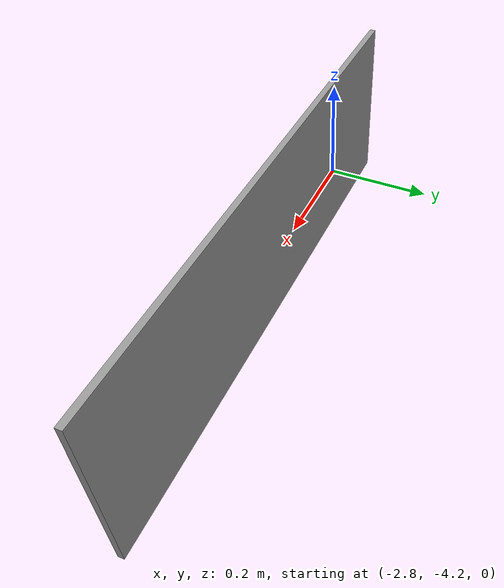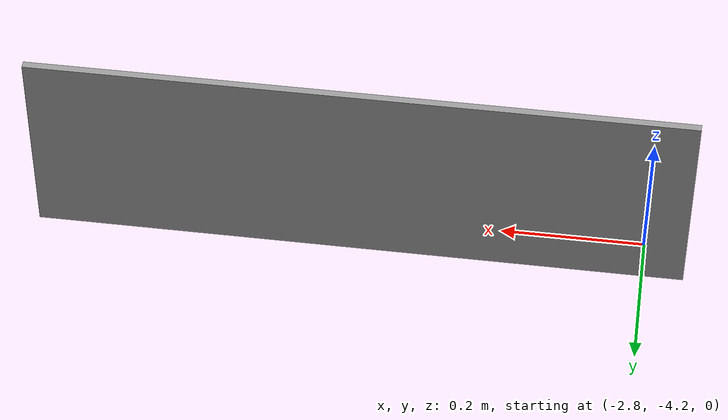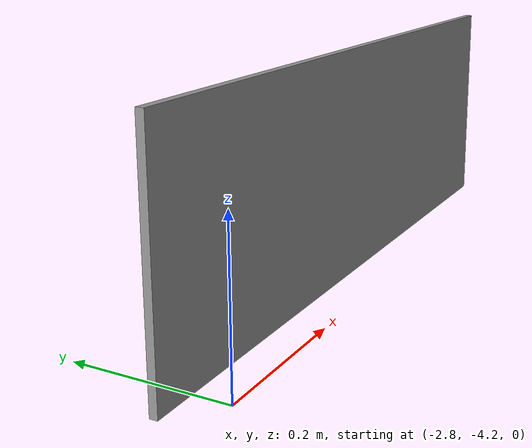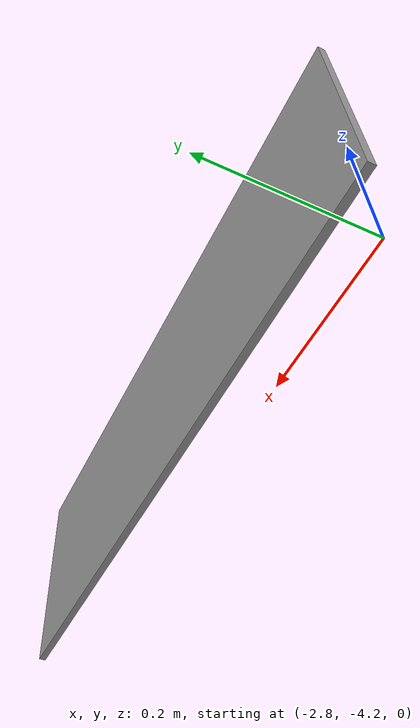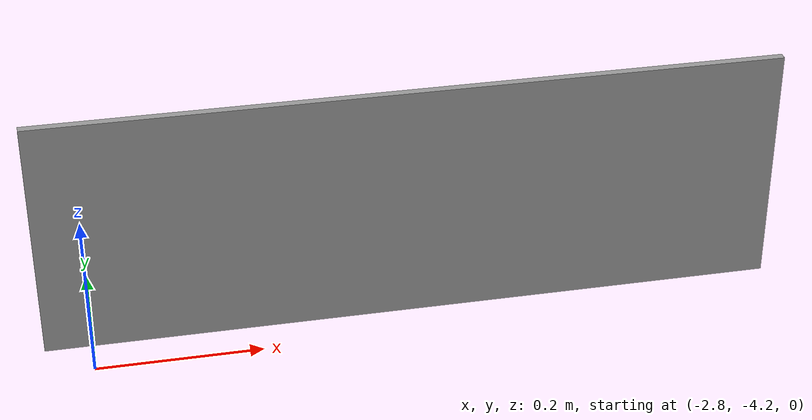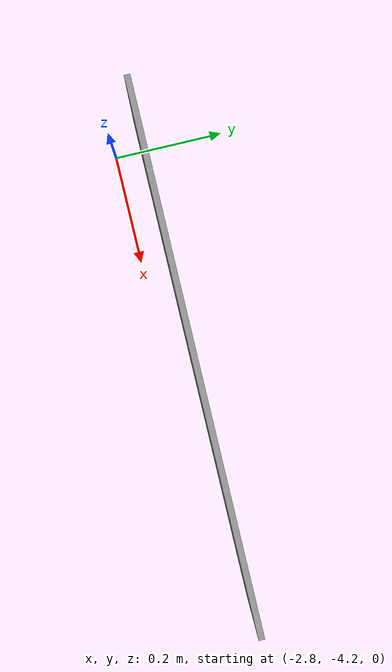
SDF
<?xml version='1.0'?>
<sdf version='1.7'>
  <model name='fusta9'>
    <pose>-1.4285 -2.0765 0 0 -0 0</pose>
    <link name='Wall_39'>
      <collision name='Wall_39_Collision'>
        <geometry>
          <box>
            <size>0.9 0.01 0.3</size>
          </box>
        </geometry>
        <pose>0 0 0.15 0 -0 0</pose>
      </collision>
      <visual name='Wall_39_Visual'>
        <pose>0 0 0.15 0 -0 0</pose>
        <geometry>
          <box>
            <size>0.9 0.01 0.3</size>
          </box>
        </geometry>
        <material>
          <script>
            <uri>file://media/materials/scripts/gazebo.material</uri>
            <name>Gazebo/Grey</name>
          </script>
          <ambient>1 1 1 1</ambient>
        </material>
        <meta>
          <layer>0</layer>
        </meta>
      </visual>
      <pose>-0.9785 -2.0715 0 0 -0 0</pose>
    </link>
    <static>1</static>
  </model>
</sdf>
